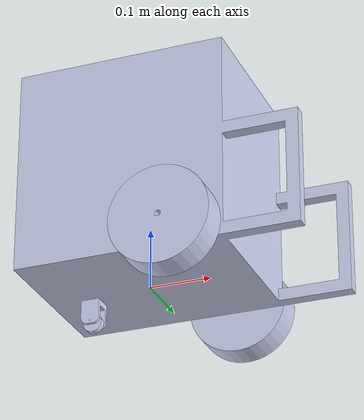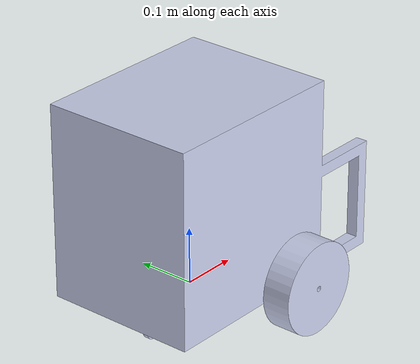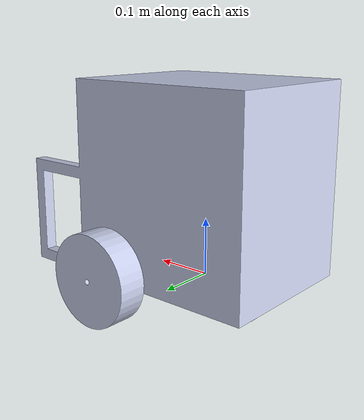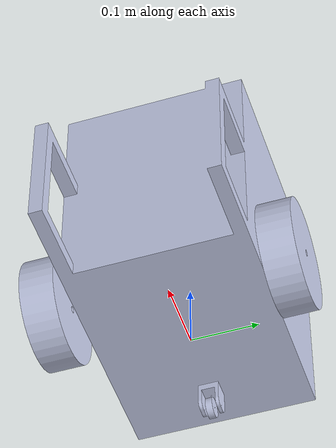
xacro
<?xml version="1.0" encoding="UTF-8"?>
<robot name="guiding-robot" xmlns:xacro="http://www.ros.org/wiki/xacro">
  <property name="M_PI" value="3.14159265" />

  <gazebo>
    <plugin filename="libgazebo_ros_diff_drive.so" name="differential_drive_controller">
      <legacyMode>false</legacyMode>
      <alwaysOn>true</alwaysOn>
      <updateRate>20</updateRate>
      <leftJoint>lwheel_joint</leftJoint>
      <rightJoint>rwheel_joint</rightJoint>
      <wheelSeparation>0.30</wheelSeparation>
      <wheelDiameter>0.18</wheelDiameter>
      <torque>20</torque>
      <commandTopic>cmd_vel</commandTopic>
      <odometryTopic>odom</odometryTopic>
      <odometryFrame>odom</odometryFrame>
      <robotBaseFrame>base_link</robotBaseFrame>
    </plugin>
  </gazebo>

  <!-- base_link -->
  <link name="base_link">
    <inertial>
      <origin xyz="0.00246443381679822 2.18659996287606E-17 0.169261888366116" rpy="0 0 0" />
      <mass value="31.523120354057" />
      <inertia
        ixx="0.498505231974098"
        ixy="-2.83765343112082E-17"
        ixz="0.00576369992383154"
        iyy="0.624288276975398"
        iyz="-2.53955408802741E-17"
        izz="0.514769338990891" />
    </inertial>
    <visual>
      <origin xyz="0 0 0" rpy="0 0 0" />
      <geometry>
        <mesh filename="package://guiding-robot_description/meshes/base_link.STL" />
      </geometry>
      <material name="">
        <color rgba="0.792156862745098 0.819607843137255 0.933333333333333 1" />
      </material>
    </visual>
    <collision>
      <origin xyz="0 0 0" rpy="0 0 0" />
      <geometry>
        <mesh filename="package://guiding-robot_description/meshes/base_link.STL" />
      </geometry>
    </collision>
  </link>

  <!-- lwheel_link -->
  <link name="lwheel_link">
    <inertial>
      <origin xyz="0 -0.025 0" py="0 0 0" />
      <mass value="3.00138265833175" />
      <inertia
        ixx="0.00181709228209782"
        ixy="-6.51779781176259E-36"
        ixz="-1.9236686017034E-36"
        iyy="0.00321694178989074"
        iyz="5.87747175411144E-36"
        izz="0.00181709228209782" />
    </inertial>
    <visual>
      <origin xyz="0 0 0" rpy="0 0 0" />
      <geometry>
        <mesh filename="package://guiding-robot_description/meshes/lwheel_link.STL" />
      </geometry>
      <material name="">
        <color rgba="0.792156862745098 0.819607843137255 0.933333333333333 1" />
      </material>
    </visual>
    <collision>
      <origin xyz="0 0 0" rpy="0 0 0" />
      <geometry>
        <mesh filename="package://guiding-robot_description/meshes/lwheel_link.STL" />
      </geometry>
    </collision>
  </link>
  <joint name="lwheel_joint" type="continuous">
    <origin xyz="0.09 0.195 0.02" rpy="0 0 0" />
    <parent link="base_link" />
    <child link="lwheel_link" />
    <axis xyz="0 -1 0" />
  </joint>

  <!-- rwheel_link -->
  <link name="rwheel_link">
    <inertial>
      <origin xyz="0 0.025 -3.46944695195361E-18" rpy="0 0 0" />
      <mass value="3.00138265833175" />
      <inertia
        ixx="0.00181709228209782"
        ixy="6.17628190706261E-22"
        ixz="-4.0550547743528E-20"
        iyy="0.00321694178989074"
        iyz="3.08814095353132E-22"
        izz="0.00181709228209782" />
    </inertial>
    <visual>
      <origin xyz="0 0 0" rpy="0 0 0" />
      <geometry>
        <mesh filename="package://guiding-robot_description/meshes/rwheel_link.STL" />
      </geometry>
      <material name="">
        <color rgba="0.792156862745098 0.819607843137255 0.933333333333333 1" />
      </material>
    </visual>
    <collision>
      <origin xyz="0 0 0" rpy="0 0 0" />
      <geometry>
        <mesh filename="package://guiding-robot_description/meshes/rwheel_link.STL" />
      </geometry>
    </collision>
  </link>
  <joint name="rwheel_joint" type="continuous">
    <origin xyz="0.09 -0.195 0.02" rpy="0 0 0" />
    <parent link="base_link" />
    <child link="rwheel_link" />
    <axis xyz="0 -1 0" />
  </joint>

  <!-- connect_link -->
  <link name="connect_link">
    <inertial>
      <origin xyz="0 -7.09462612139099E-19 -0.0144239451586787" rpy="0 0 0" />
      <mass value="1.0175079644737231" />
      <inertia
        ixx="4.33130567920928E-06"
        ixy="-1.93809223727159E-23"
        ixz="-3.0651775301773E-22"
        iyy="3.58276907819305E-06"
        iyz="-1.5952513328309E-22"
        izz="3.30558481776918E-06" />
    </inertial>
    <visual>
      <origin xyz="0 0 0" rpy="0 0 0" />
      <geometry>
        <mesh filename="package://guiding-robot_description/meshes/connect_link.STL" />
      </geometry>
      <material name="">
        <color rgba="0.792156862745098 0.819607843137255 0.933333333333333 1" />
      </material>
    </visual>
    <collision>
      <origin xyz="0 0 0" rpy="0 0 0" />
      <geometry>
        <mesh filename="package://guiding-robot_description/meshes/connect_link.STL" />
      </geometry>
    </collision>
  </link>
  <joint name="connect_joint" type="continuous">
    <origin xyz="-0.095 0 -0.01" rpy="0 0 0" />
    <parent link="base_link" />
    <child link="connect_link" />
    <axis xyz="0 0 1" />
  </joint>

  <!-- swheel_link -->
  <link name="swheel_link">
    <inertial>
      <origin xyz="0 0 0.005" rpy="0 0 0" />
      <mass value="1.00703716754404113" />
      <inertia
        ixx="4.56243029105334E-07"
        ixy="9.9237209660737E-40"
        ixz="-1.19980782612949E-43"
        iyy="7.95199932476648E-07"
        iyz="1.02903917823648E-39"
        izz="4.56243029105334E-07" />
    </inertial>
    <visual>
      <origin xyz="0 0 0" rpy="0 0 0" />
      <geometry>
        <mesh filename="package://guiding-robot_description/meshes/swheel_link.STL" />
      </geometry>
      <material name="">
        <color rgba="0.792156862745098 0.819607843137255 0.933333333333333 1" />
      </material>
    </visual>
    <collision>
      <origin xyz="0 0 0" rpy="0 0 0" />
      <geometry>
        <mesh filename="package://guiding-robot_description/meshes/swheel_link.STL" />
      </geometry>
    </collision>
  </link>
  <joint name="swheel_joint" type="continuous">
    <origin xyz="0 -0.005 -0.035" rpy="0 0 0" />
    <parent link="connect_link" />
    <child link="swheel_link" />
    <axis xyz="0 -1 0" />
  </joint>
</robot>
